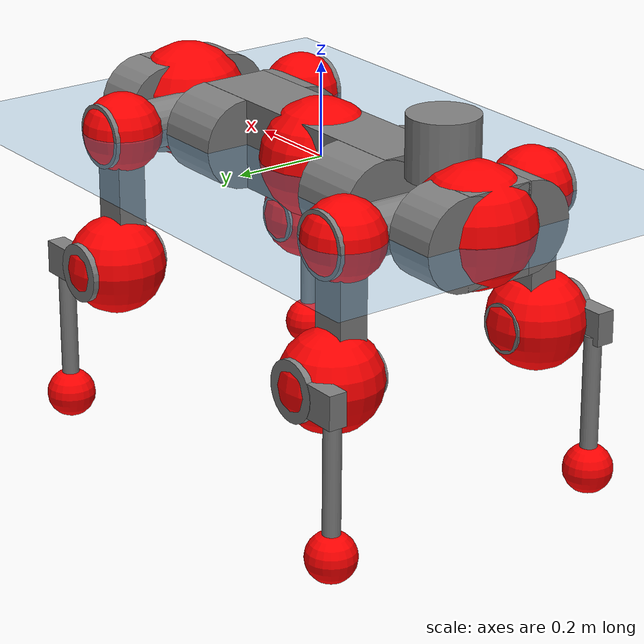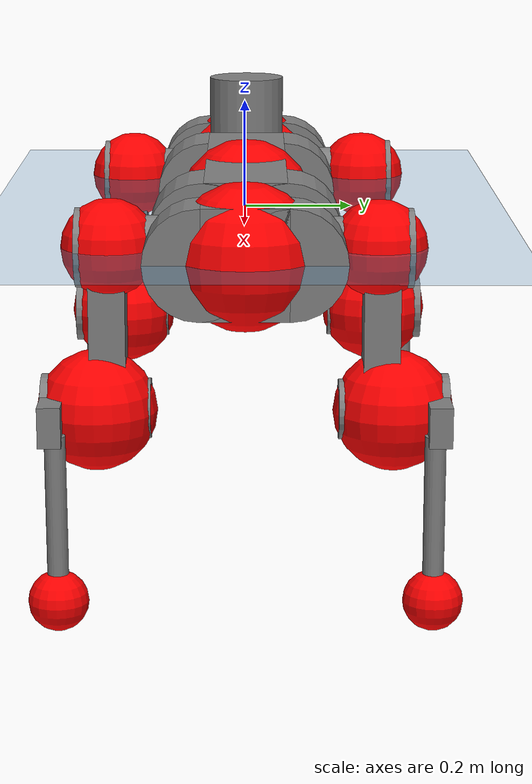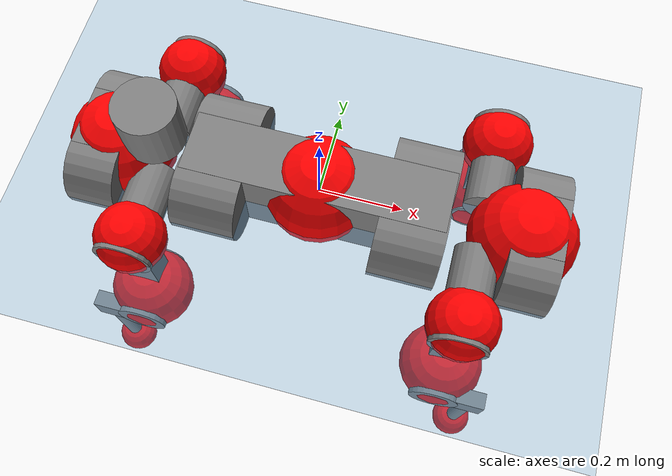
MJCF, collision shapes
<mujoco model="anymal_c">
  <compiler angle="radian" assetdir="assets" balanceinertia="true" inertiafromgeom="false"/>

  <option timestep="0.005" density="1.2" viscosity="2e-05"/>

  <size nkey="1"/>

  <visual>
    <quality shadowsize="8192"/>
    <map shadowclip="0.5"/>
  </visual>

  <default>
    <default class="/">
      <material specular="0" shininess="0.25"/>
      <geom contype="0" conaffinity="0" group="1" solref="-1000 -80"/>
      <site size="0.01 0.005 0.005" group="5"/>
      <general forcelimited="true" forcerange="-80 80" biastype="affine" gainprm="80" biasprm="0 -80 -2"/>
      <default class="anymal_c">
        <joint armature="0.01" damping="0.01" frictionloss="0.1"/>
        <default class="visual">
          <geom type="mesh" group="2"/>
          <default class="visual_zflip"/>
        </default>
        <default class="collision">
          <geom type="cylinder" group="3"/>
          <default class="foot">
            <geom size="0.03 0 0" type="sphere" condim="6" priority="1" friction="0.8 0.02 0.01" solimp="0.015 1 0.03"/>
          </default>
        </default>
      </default>
      <default class="reward_collision_sphere">
        <geom group="5" rgba="1 0 0 1"/>
      </default>
    </default>
  </default>

  <asset>
    <texture type="skybox" colorspace="auto" name="//unnamed_texture_0" builtin="gradient" rgb1="0.95 0.95 0.95" rgb2="0.95 0.95 0.95" width="100" height="600"/>
    <texture type="2d" colorspace="auto" name="texplane" builtin="checker" rgb1="0.345 0.575 0.748" rgb2="0.345 0.575 0.748" markrgb="1 1 1" width="512" height="512"/>
    <texture type="2d" colorspace="linear" name="base" file="base.png"/>
    <texture type="2d" colorspace="linear" name="top_shell" file="top_shell.png"/>
    <texture type="2d" colorspace="linear" name="bottom_shell" file="bottom_shell.png"/>
    <texture type="2d" colorspace="linear" name="remote" file="remote.png"/>
    <texture type="2d" colorspace="linear" name="hatch" file="hatch.png"/>
    <texture type="2d" colorspace="linear" name="handle" file="handle.png"/>
    <texture type="2d" colorspace="linear" name="face" file="face.png"/>
    <texture type="2d" colorspace="linear" name="battery" file="battery.png"/>
    <texture type="2d" colorspace="linear" name="lidar_cage" file="lidar_cage.png"/>
    <texture type="2d" colorspace="linear" name="depth_camera" file="depth_camera.png"/>
    <texture type="2d" colorspace="linear" name="wide_angle_camera" file="wide_angle_camera.png"/>
    <texture type="2d" colorspace="linear" name="lidar" file="lidar.png"/>
    <texture type="2d" colorspace="linear" name="drive" file="drive.png"/>
    <texture type="2d" colorspace="linear" name="hip_l" file="hip_l.png"/>
    <texture type="2d" colorspace="linear" name="shank_l" file="shank_l.png"/>
    <texture type="2d" colorspace="linear" name="foot" file="foot.png"/>
    <texture type="2d" colorspace="linear" name="thigh" file="thigh.png"/>
    <texture type="2d" colorspace="linear" name="shank_r" file="shank_r.png"/>
    <texture type="2d" colorspace="linear" name="hip_r" file="hip_r.png"/>
    <material name="MatPlane" class="/" texture="texplane" texuniform="true" texrepeat="2 2" specular="0.9" shininess="0.5"/>
    <material name="black_plastic" class="/" rgba="0.007 0.007 0.007 1"/>
    <material name="green" class="/" rgba="0.052 0.178 0.033 1"/>
    <material name="red" class="/" rgba="0.178 0.006 0.005 1"/>
    <material name="yellow" class="/" rgba="0.178 0.119 0.006 1"/>
    <material name="lwl" class="/" rgba="0.8 0.8 0.8 1"/>
    <material name="base" class="/" texture="base"/>
    <material name="top_shell" class="/" texture="top_shell"/>
    <material name="bottom_shell" class="/" texture="bottom_shell"/>
    <material name="hip_l" class="/" texture="hip_l"/>
    <material name="thigh" class="/" texture="thigh"/>
    <material name="shank_l" class="/" texture="shank_l"/>
    <material name="foot" class="/" texture="foot"/>
    <material name="hip_r" class="/" texture="hip_r"/>
    <material name="shank" class="/" texture="shank_r"/>
    <material name="hatch" class="/" texture="hatch"/>
    <material name="remote" class="/" texture="remote"/>
    <material name="handle" class="/" texture="handle"/>
    <material name="face" class="/" texture="face"/>
    <material name="depth_camera" class="/" texture="depth_camera"/>
    <material name="wide_angle_camera" class="/" texture="wide_angle_camera"/>
    <material name="battery" class="/" texture="battery"/>
    <material name="lidar_cage" class="/" texture="lidar_cage"/>
    <material name="lidar" class="/" texture="lidar"/>
    <material name="drive" class="/" texture="drive"/>
    <mesh name="base_0" class="/" file="base_0.obj"/>
    <mesh name="base_1" class="/" file="base_1.obj"/>
    <mesh name="base_2" class="/" file="base_2.obj"/>
    <mesh name="base_3" class="/" file="base_3.obj"/>
    <mesh name="base_4" class="/" file="base_4.obj"/>
    <mesh name="base_5" class="/" file="base_5.obj"/>
    <mesh name="top_shell" class="/" file="top_shell.obj"/>
    <mesh name="bottom_shell" class="/" file="bottom_shell.obj"/>
    <mesh name="remote" class="/" file="remote.obj"/>
    <mesh name="handle" class="/" file="handle.obj"/>
    <mesh name="face" class="/" file="face.obj"/>
    <mesh name="wide_angle_camera" class="/" file="wide_angle_camera.obj"/>
    <mesh name="depth_camera" class="/" file="depth_camera.obj"/>
    <mesh name="battery" class="/" file="battery.obj"/>
    <mesh name="lidar_cage" class="/" file="lidar_cage.obj"/>
    <mesh name="lidar" class="/" file="lidar.obj"/>
    <mesh name="drive" class="/" file="drive.obj"/>
    <mesh name="hip_l" class="/" file="hip_l.obj"/>
    <mesh name="thigh" class="/" file="thigh.obj"/>
    <mesh name="shank_l" class="/" file="shank_l.obj"/>
    <mesh name="foot" class="/" file="foot.obj"/>
    <mesh name="hip_r" class="/" file="hip_r.obj"/>
    <mesh name="hatch" class="/" file="hatch.obj"/>
    <mesh name="shank_r" class="/" file="shank_r.obj"/>
  </asset>

  <worldbody>
    <geom name="floor" class="/" size="100 100 0.125" type="plane" group="0" material="MatPlane"/>
    <light name="toplight_shadow" class="/" pos="0 0 5" dir="0.0990148 0.0990148 -0.990148" type="directional" ambient="0.04 0.04 0.04" diffuse="0.55 0.55 0.55" specular="0.12 0.12 0.12"/>
    <light name="toplight_fill" class="/" pos="0 0 5" dir="0.0990148 0.0990148 -0.990148" type="directional" castshadow="false" ambient="0.04 0.04 0.04" diffuse="0.3 0.3 0.3" specular="0.08 0.08 0.08"/>
    <body name="trunk" childclass="anymal_c" pos="-0.00275413 0.00210807 -0.000978885" quat="0.999999 0.000690666 0.000859487 0.000601575">
      <inertial pos="0.0025539 -0.00243159 0.0508498" quat="0.504434 0.496797 0.500191 0.498546" mass="23.4972" diaginertia="0.878939 0.970277 0.223563"/>
      <joint name="//unnamed_joint_0" type="free" armature="0" damping="0" frictionloss="0"/>
      <geom name="//unnamed_geom_1" class="visual" material="green" mesh="base_0"/>
      <geom name="//unnamed_geom_2" class="visual" material="yellow" mesh="base_1"/>
      <geom name="//unnamed_geom_3" class="visual" material="red" mesh="base_2"/>
      <geom name="//unnamed_geom_4" class="visual" material="black_plastic" mesh="base_3"/>
      <geom name="//unnamed_geom_5" class="visual" material="lwl" mesh="base_4"/>
      <geom name="//unnamed_geom_6" class="visual" material="base" mesh="base_5"/>
      <geom name="trunk_1" class="collision" size="0.307696 0.0742715 0.0954919" type="box"/>
      <geom name="trunk_2" class="collision" size="0.0954919 0.076924" pos="0.23454 0.0767848 0" quat="0.707107 0 0.707107 0"/>
      <geom name="trunk_3" class="collision" size="0.0954919 0.076924" pos="-0.23454 0.0767848 0" quat="0.707107 0 0.707107 0"/>
      <geom name="trunk_4" class="collision" size="0.0954919 0.076924" pos="0.23454 -0.0767848 0" quat="0.707107 0 0.707107 0"/>
      <geom name="trunk_5" class="collision" size="0.0954919 0.076924" pos="-0.23454 -0.0767848 0" quat="0.707107 0 0.707107 0"/>
      <geom name="//unnamed_geom_12" class="visual" material="top_shell" mesh="top_shell"/>
      <geom name="//unnamed_geom_13" class="visual" material="bottom_shell" mesh="bottom_shell"/>
      <geom name="//unnamed_geom_14" class="visual" material="remote" mesh="remote"/>
      <geom name="//unnamed_geom_15" class="visual" material="handle" mesh="handle"/>
      <geom name="//unnamed_geom_16" class="visual" pos="0.446974 0 0" quat="1 0 0 0" material="face" mesh="face"/>
      <geom name="trunk_6" class="collision" size="0.0583561 0.0742715 0.0954919" pos="0.506283 0 0" type="box"/>
      <geom name="//unnamed_geom_18" class="collision" size="0.0954919 0.0583561" pos="0.506283 0.0767848 0" quat="0.707107 0 0.707107 0"/>
      <geom name="//unnamed_geom_19" class="collision" size="0.0954919 0.0583561" pos="0.506283 -0.0767848 0" quat="0.707107 0 0.707107 0"/>
      <geom name="//unnamed_geom_20" class="visual" pos="0.497815 0 -0.0288913" quat="0.965926 0 0.258819 0" material="depth_camera" mesh="depth_camera"/>
      <geom name="//unnamed_geom_21" class="visual" pos="0.553191 0 0.0150866" material="wide_angle_camera" mesh="wide_angle_camera"/>
      <geom name="//unnamed_geom_22" class="visual_zflip" pos="-0.446974 0 0" quat="0 0 0 1" material="face" mesh="face"/>
      <geom name="trunk_7" class="collision" size="0.0583561 0.0742715 0.0954919" pos="-0.506283 0 0" quat="0 0 0 1" type="box"/>
      <geom name="//unnamed_geom_24" class="collision" size="0.0954919 0.0583561" pos="-0.506283 -0.0767848 0" quat="0 -0.707107 0 0.707107"/>
      <geom name="//unnamed_geom_25" class="collision" size="0.0954919 0.0583561" pos="-0.506283 0.0767848 0" quat="0 -0.707107 0 0.707107"/>
      <geom name="//unnamed_geom_26" class="visual" pos="-0.497815 0 -0.0288913" quat="0 -0.258819 0 0.965926" material="depth_camera" mesh="depth_camera"/>
      <geom name="//unnamed_geom_27" class="visual_zflip" pos="-0.553191 0 0.0150866" quat="0 0 0 1" material="wide_angle_camera" mesh="wide_angle_camera"/>
      <geom name="//unnamed_geom_28" class="visual" material="battery" mesh="battery"/>
      <geom name="//unnamed_geom_29" class="visual" pos="0 0.0841118 0.0298126" quat="0.683013 -0.183013 0.183013 0.683013" material="depth_camera" mesh="depth_camera"/>
      <geom name="//unnamed_geom_30" class="visual" pos="0 -0.0841118 0.0298126" quat="0.683013 0.183013 0.183013 -0.683013" material="depth_camera" mesh="depth_camera"/>
      <geom name="//unnamed_geom_31" class="visual" pos="-0.392518 0 0.0740727" quat="1 0 0 0" material="lidar_cage" mesh="lidar_cage"/>
      <geom name="trunk_8" class="collision" size="0.0742715 0.0636613" pos="-0.392518 0 0.13454"/>
      <geom name="//unnamed_geom_33" class="visual" pos="-0.392518 7.3e-06 0.143308" quat="0.707107 0 0 -0.707107" material="lidar" mesh="lidar"/>
      <geom name="//unnamed_geom_34" class="visual" pos="0.323396 0.114049 1.53757e-09" quat="0.258819 0.965926 0 0" material="drive" mesh="drive"/>
      <geom name="//unnamed_geom_35" class="visual" pos="0.323396 -0.114049 -1.53757e-09" quat="0.258819 -0.965926 0 0" material="drive" mesh="drive"/>
      <geom name="//unnamed_geom_36" class="visual" pos="-0.323396 0.114049 -1.53757e-09" quat="0 0 0.965926 -0.258819" material="drive" mesh="drive"/>
      <geom name="//unnamed_geom_37" class="visual" pos="-0.323396 -0.114049 1.53757e-09" quat="0 0 -0.965926 -0.258819" material="drive" mesh="drive"/>
      <geom name="//unnamed_geom_38" class="visual" pos="0.125088 0 0.0735688" quat="1 0 0 0" material="hatch" mesh="hatch"/>
      <geom name="//unnamed_geom_39" class="reward_collision_sphere" size="0.127323"/>
      <geom name="//unnamed_geom_40" class="reward_collision_sphere" size="0.127323" pos="0.485255 0 0"/>
      <geom name="//unnamed_geom_41" class="reward_collision_sphere" size="0.127323" pos="-0.485255 0 0"/>
      <site name="imu" pos="0.280854 -0.000637566 0.0671741" size="0.0106102"/>
      <camera name="track" pos="0 -2.19385 0" quat="0.707107 0.707107 0 0" mode="trackcom"/>
      <camera name="ego_camera" pos="0.485255 0 -0.0403117" quat="-0.5 -0.5 0.5 0.5"/>
      <body name="LF_HIP" pos="0.326114 0.114067 -0.00143453" quat="0.258551 0.965997 -0.000218963 0.00100711">
        <inertial pos="0.0646917 -0.0186275 -0.00739669" quat="-0.130741 0.711122 -0.136839 0.677117" mass="3.21265" diaginertia="0.00826477 0.0078529 0.00333851"/>
        <joint name="LF_HAA" pos="0 0 0" axis="0.999645 -0.0220215 0.0150144" stiffness="0.0137831" range="-0.742641 0.485695" armature="0.0127545" damping="0.0241824" frictionloss="0.113904"/>
        <geom name="//unnamed_geom_42" class="visual" pos="0 9.04483e-05 -1.48561e-05" quat="0.258819 -0.965926 0 0" material="hip_l" mesh="hip_l"/>
        <geom name="//unnamed_geom_43" class="visual" pos="0.0645929 -0.078481 -0.0446517" quat="0.183013 -0.683013 0.683013 0.183013" material="drive" mesh="drive"/>
        <geom name="//unnamed_geom_44" class="collision" size="0.053051 0.0742715" pos="0.0645929 -0.013119 -0.0069588" quat="-0.353553 -0.612372 0.612372 -0.353553"/>
        <body name="LF_THIGH" pos="0.0643727 -0.0794919 -0.042407" quat="0.182836 -0.683281 0.682983 0.182297">
          <inertial pos="0.0330686 0.000297767 -0.243009" quat="0.992837 0.00185187 -0.0806402 0.0881433" mass="3.57885" diaginertia="0.0427222 0.0462138 0.00423087"/>
          <joint name="LF_HFE" pos="0 0 0" axis="0.999965 -0.00161691 0.00816248" range="-3.10501 3.14157" armature="0.00956683" damping="0.00415574" frictionloss="0.10189"/>
          <geom name="//unnamed_geom_45" class="visual" pos="-0.00036969 -5.82545e-07 0" quat="0.707107 0 0 -0.707107" material="thigh" mesh="thigh"/>
          <geom name="//unnamed_geom_46" class="collision" size="0.0689664 0.0424408" pos="0.0431338 0 0" quat="0.5 0.5 -0.5 -0.5"/>
          <geom name="//unnamed_geom_47" class="collision" size="0.0397883 0.0318306 0.149937" pos="0.0323503 0 -0.142415" quat="0.707107 0 0 -0.707107" type="box"/>
          <geom name="//unnamed_geom_48" class="visual" pos="0.108158 0 -0.287221" quat="1 0 0 0" material="drive" mesh="drive"/>
          <geom name="//unnamed_geom_49" class="collision" size="0.053051 0.0742715" pos="0.0326738 0 -0.287221" quat="0.707107 0 0.707107 0"/>
          <geom name="//unnamed_geom_50" class="reward_collision_sphere" size="0.0848817" pos="0.0269586 0 0"/>
          <body name="LF_SHANK" pos="0.108582 0.00478012 -0.290229" quat="1 1.44098e-05 0.000199479 -0.000212064">
            <inertial pos="0.00746222 -0.069605 -0.0808983" quat="0.992683 -0.112882 -0.000757893 -0.042872" mass="0.712336" diaginertia="0.0151061 0.0146229 0.00120084"/>
            <joint name="LF_KFE" pos="0 0 0" axis="0.999896 0.0134146 -0.00529943" range="-3.15602 3.095" armature="0.0101178" damping="0.0118812" frictionloss="0.113513"/>
            <geom name="//unnamed_geom_51" class="visual" pos="-0.000120548 -0.000642768 0" quat="0.707107 0 0 -0.707107" material="shank_l" mesh="shank_l"/>
            <geom name="LF_kfe_act" class="collision" size="0.0636613 0.0212204" pos="0.0215669 0 0" quat="0.5 0.5 -0.5 -0.5"/>
            <geom name="//unnamed_geom_53" class="collision" size="0.0610076 0.0358095 0.0201594" pos="0.0215669 -0.0630721 0" quat="0.5 0.5 -0.5 -0.5" type="box"/>
            <geom name="//unnamed_geom_54" class="visual" pos="0.0140724 -0.0966818 -0.340603" quat="0.382683 0 0 -0.92388" material="foot" mesh="foot"/>
            <geom name="LF_calf" class="collision" size="0.0185679 0.149871" pos="0.0140724 -0.0964746 -0.170302" quat="0.707107 0 0 -0.707107"/>
            <geom name="LF_foot" class="foot" size="0.0319005" pos="0.0140724 -0.0964746 -0.317928" quat="0.707107 0 0 -0.707107"/>
            <geom name="//unnamed_geom_57" class="reward_collision_sphere" size="0.106102" pos="-0.0539172 0 0"/>
            <geom name="//unnamed_geom_58" class="reward_collision_sphere" size="0.053051" pos="0.0140724 -0.0964746 -0.317928"/>
            <site name="LF_foot" class="foot" pos="0.0140724 -0.0964746 -0.317928" quat="0.707107 0 0 -0.707107" size="0.0106102"/>
          </body>
        </body>
      </body>
      <body name="RF_HIP" pos="0.328086 -0.118859 0.00161731" quat="0.2598 -0.965662 0.000377584 -6.5637e-05">
        <inertial pos="0.0568625 0.0197768 -0.00511888" quat="0.136705 0.677994 0.126937 0.711001" mass="3.24093" diaginertia="0.00806062 0.00743344 0.00324109"/>
        <joint name="RF_HAA" pos="0 0 0" axis="0.999924 -0.00162453 -0.0122222" range="-0.422227 0.759648" armature="0.0102182" damping="0.0189547" frictionloss="0.116328"/>
        <geom name="//unnamed_geom_59" class="visual" pos="0 -9.04476e-05 -1.4856e-05" quat="0.258819 0.965926 0 0" material="hip_r" mesh="hip_r"/>
        <geom name="//unnamed_geom_60" class="visual" pos="0.0645929 0.078481 -0.0446517" quat="0.183013 0.683013 0.683013 -0.183013" material="drive" mesh="drive"/>
        <geom name="//unnamed_geom_61" class="collision" size="0.053051 0.0742715" pos="0.0645929 0.013119 -0.0069588" quat="-0.353553 0.612372 0.612372 0.353553"/>
        <body name="RF_THIGH" pos="0.0647627 0.0781262 -0.041835" quat="0.183319 0.683627 0.68238 -0.182772">
          <inertial pos="0.0319714 -0.00539394 -0.245005" quat="0.992807 -0.00493213 -0.080272 0.0886917" mass="3.78197" diaginertia="0.0439914 0.0502101 0.00447101"/>
          <joint name="RF_HFE" pos="0 0 0" axis="0.999997 0.00140351 -0.00208478" stiffness="0.0104309" range="-3.18061 3.16752" armature="0.00916367" damping="0.0147939" frictionloss="0.118606"/>
          <geom name="//unnamed_geom_62" class="visual" pos="-0.00036969 -5.82545e-07 0" quat="0.707107 0 0 -0.707107" material="thigh" mesh="thigh"/>
          <geom name="//unnamed_geom_63" class="collision" size="0.0689664 0.0424408" pos="0.0431338 0 0" quat="0.5 0.5 0.5 0.5"/>
          <geom name="//unnamed_geom_64" class="collision" size="0.0397883 0.0318306 0.149937" pos="0.0323503 0 -0.142415" quat="0.707107 0 0 0.707107" type="box"/>
          <geom name="//unnamed_geom_65" class="visual" pos="0.108158 0 -0.287221" quat="1 0 0 0" material="drive" mesh="drive"/>
          <geom name="//unnamed_geom_66" class="collision" size="0.053051 0.0742715" pos="0.0326738 0 -0.287221" quat="0.707107 0 0.707107 0"/>
          <geom name="//unnamed_geom_67" class="reward_collision_sphere" size="0.0848817" pos="0.0269586 0 0"/>
          <body name="RF_SHANK" pos="0.106962 0.00291891 -0.289352" quat="0.999997 0.00121796 0.0016377 0.000932129">
            <inertial pos="0.000368522 0.0670947 -0.0831622" quat="0.993368 0.110304 0.00680121 0.0317279" mass="0.701188" diaginertia="0.014665 0.013885 0.00106982"/>
            <joint name="RF_KFE" pos="0 0 0" axis="0.999939 -0.00525604 0.00968161" range="-3.06682 3.11802" armature="0.0117758" damping="0" frictionloss="0.0925717"/>
            <geom name="//unnamed_geom_68" class="visual" pos="-0.000120547 0.000642766 0" quat="0.707107 0 0 0.707107" material="shank" mesh="shank_r"/>
            <geom name="RF_kfe_act" class="collision" size="0.0636613 0.0212204" pos="0.0215669 0 0" quat="0.5 0.5 0.5 0.5"/>
            <geom name="//unnamed_geom_70" class="collision" size="0.0610076 0.0358095 0.0201594" pos="0.0215669 0.0630721 0" quat="0.5 0.5 0.5 0.5" type="box"/>
            <geom name="//unnamed_geom_71" class="visual" pos="0.0140724 0.0966818 -0.340603" quat="0.382683 0 0 0.92388" material="foot" mesh="foot"/>
            <geom name="RF_calf" class="collision" size="0.0185679 0.149871" pos="0.0140724 0.0964746 -0.170302" quat="0.707107 0 0 0.707107"/>
            <geom name="RF_foot" class="foot" size="0.0291268" pos="0.0140724 0.0964746 -0.317928" quat="0.707107 0 0 0.707107"/>
            <geom name="//unnamed_geom_74" class="reward_collision_sphere" size="0.106102" pos="-0.0539172 0 0"/>
            <geom name="//unnamed_geom_75" class="reward_collision_sphere" size="0.053051" pos="0.0140724 0.0964746 -0.317928"/>
            <site name="RF_foot" class="foot" pos="0.0140724 0.0964746 -0.317928" quat="0.707107 0 0 0.707107" size="0.0106102"/>
          </body>
        </body>
      </body>
      <body name="LH_HIP" pos="-0.329013 0.116699 -0.000287652" quat="0.000287345 0.00081616 0.965867 -0.259038">
        <inertial pos="0.0574324 0.021974 -0.00922171" quat="0.12433 0.680531 0.132565 0.709821" mass="3.2922" diaginertia="0.00835803 0.00788288 0.00355002"/>
        <joint name="LH_HAA" pos="0 0 0" axis="0.999955 0.00732543 0.00599603" range="-0.49736 0.764786" armature="0.0105268" damping="0.00858979" frictionloss="0.0938255"/>
        <geom name="//unnamed_geom_76" class="visual" pos="0 -9.04476e-05 -1.4856e-05" quat="-0.258819 -0.965926 0 0" material="hip_r" mesh="hip_r"/>
        <geom name="//unnamed_geom_77" class="visual" pos="0.0645929 0.078481 -0.0446517" quat="0.183013 0.683013 0.683013 -0.183013" material="drive" mesh="drive"/>
        <geom name="//unnamed_geom_78" class="collision" size="0.053051 0.0742715" pos="0.0645929 0.013119 -0.0069588" quat="-0.353553 0.612372 0.612372 0.353553"/>
        <body name="LH_THIGH" pos="0.0650975 0.0816989 -0.0444653" quat="0.184161 0.682653 0.683175 -0.182594">
          <inertial pos="0.0357225 -0.00407099 -0.246617" quat="0.992872 -0.00722933 -0.0760844 0.0914562" mass="3.75094" diaginertia="0.0438503 0.0475536 0.00458216"/>
          <joint name="LH_HFE" pos="0 0 0" axis="0.999878 -0.013277 0.00828717" stiffness="0.00352548" range="-3.14651 3.14505" armature="0.00873584" damping="0.0199585" frictionloss="0.0954667"/>
          <geom name="//unnamed_geom_79" class="visual" pos="-0.00036969 -5.82545e-07 0" quat="0.707107 0 0 -0.707107" material="thigh" mesh="thigh"/>
          <geom name="//unnamed_geom_80" class="collision" size="0.0689664 0.0424408" pos="0.0431338 0 0" quat="0.5 0.5 -0.5 -0.5"/>
          <geom name="//unnamed_geom_81" class="collision" size="0.0397883 0.0318306 0.149937" pos="0.0323503 0 -0.142415" quat="0.707107 0 0 -0.707107" type="box"/>
          <geom name="//unnamed_geom_82" class="visual" pos="0.108158 0 -0.287221" quat="1 0 0 0" material="drive" mesh="drive"/>
          <geom name="//unnamed_geom_83" class="collision" size="0.053051 0.0742715" pos="0.0326738 0 -0.287221" quat="0.707107 0 0.707107 0"/>
          <geom name="//unnamed_geom_84" class="reward_collision_sphere" size="0.0848817" pos="0.0269586 0 0"/>
          <body name="LH_SHANK" pos="0.10797 -0.00206164 -0.282393" quat="0.999997 -0.00199342 -0.00110089 0.000812341">
            <inertial pos="0.00741771 0.0673888 -0.0869016" quat="0.992506 0.118705 0.00161575 0.0289616" mass="0.722532" diaginertia="0.0147027 0.0142057 0.00114859"/>
            <joint name="LH_KFE" pos="0 0 0" axis="0.999952 0.00974108 -0.00110189" range="-3.09764 3.13501" armature="0.0119317" damping="0.00510233" frictionloss="0.112781"/>
            <geom name="//unnamed_geom_85" class="visual" pos="-0.000120547 0.000642766 0" quat="-0.707107 0 0 -0.707107" material="shank" mesh="shank_r"/>
            <geom name="LH_kfe_act" class="collision" size="0.0636613 0.0212204" pos="0.0215669 0 0" quat="0.5 0.5 -0.5 -0.5"/>
            <geom name="//unnamed_geom_87" class="collision" size="0.0610076 0.0358095 0.0201594" pos="0.0215669 0.0630721 0" quat="0.5 0.5 -0.5 -0.5" type="box"/>
            <geom name="//unnamed_geom_88" class="visual" pos="0.0140724 0.0966818 -0.340603" quat="-0.382683 0 0 -0.92388" material="foot" mesh="foot"/>
            <geom name="LH_calf" class="collision" size="0.0185679 0.149871" pos="0.0140724 0.0964746 -0.170302" quat="0.707107 0 0 -0.707107"/>
            <geom name="LH_foot" class="foot" size="0.0338603" pos="0.0140724 0.0964746 -0.317928" quat="0.707107 0 0 -0.707107"/>
            <geom name="//unnamed_geom_91" class="reward_collision_sphere" size="0.106102" pos="-0.0539172 0 0"/>
            <geom name="//unnamed_geom_92" class="reward_collision_sphere" size="0.053051" pos="0.0140724 0.0964746 -0.317928"/>
            <site name="LH_foot" class="foot" pos="0.0140724 0.0964746 -0.317928" quat="0.707107 0 0 -0.707107" size="0.0106102"/>
          </body>
        </body>
      </body>
      <body name="RH_HIP" pos="-0.319489 -0.111389 -0.000328412" quat="-0.000246711 0.000899379 -0.965923 -0.258829">
        <inertial pos="0.0604201 -0.0156658 -0.00908519" quat="-0.119576 0.710939 -0.117826 0.682923" mass="3.24112" diaginertia="0.00837303 0.00759158 0.00333633"/>
        <joint name="RH_HAA" pos="0 0 0" axis="0.999767 -0.0165226 0.0139031" range="-0.722853 0.540922" armature="0.00947595" damping="0.0170131" frictionloss="0.104135"/>
        <geom name="//unnamed_geom_93" class="visual" pos="0 9.04483e-05 -1.48561e-05" quat="-0.258819 0.965926 0 0" material="hip_l" mesh="hip_l"/>
        <geom name="//unnamed_geom_94" class="visual" pos="0.0645929 -0.078481 -0.0446517" quat="-0.183013 0.683013 -0.683013 -0.183013" material="drive" mesh="drive"/>
        <geom name="//unnamed_geom_95" class="collision" size="0.053051 0.0742715" pos="0.0645929 -0.013119 -0.0069588" quat="0.353553 0.612372 -0.612372 0.353553"/>
        <body name="RH_THIGH" pos="0.0667995 -0.08095 -0.0452543" quat="-0.183409 0.682829 -0.682755 -0.184258">
          <inertial pos="0.0360567 -0.00123625 -0.245002" quat="0.994013 0.00507518 -0.0590586 0.091787" mass="3.51947" diaginertia="0.0435574 0.0459634 0.00403328"/>
          <joint name="RH_HFE" pos="0 0 0" axis="0.999894 0.0139956 0.00399696" stiffness="0.00411168" range="-3.15275 3.18931" armature="0.00965969" damping="0.0222035" frictionloss="0.0987387"/>
          <geom name="//unnamed_geom_96" class="visual" pos="-0.00036969 -5.82545e-07 0" quat="0.707107 0 0 -0.707107" material="thigh" mesh="thigh"/>
          <geom name="//unnamed_geom_97" class="collision" size="0.0689664 0.0424408" pos="0.0431338 0 0" quat="0.5 0.5 0.5 0.5"/>
          <geom name="//unnamed_geom_98" class="collision" size="0.0397883 0.0318306 0.149937" pos="0.0323503 0 -0.142415" quat="0.707107 0 0 0.707107" type="box"/>
          <geom name="//unnamed_geom_99" class="visual" pos="0.108158 0 -0.287221" quat="1 0 0 0" material="drive" mesh="drive"/>
          <geom name="//unnamed_geom_100" class="collision" size="0.053051 0.0742715" pos="0.0326738 0 -0.287221" quat="0.707107 0 0.707107 0"/>
          <geom name="//unnamed_geom_101" class="reward_collision_sphere" size="0.0848817" pos="0.0269586 0 0"/>
          <body name="RH_SHANK" pos="0.106055 0.000427328 -0.287396" quat="1 2.7715e-05 0.000162637 -1.33363e-05">
            <inertial pos="0.00852135 -0.0627001 -0.0849963" quat="0.993064 -0.115482 0.000351367 -0.0220928" mass="0.672751" diaginertia="0.0145655 0.0139952 0.00113667"/>
            <joint name="RH_KFE" pos="0 0 0" axis="1 -8.81947e-05 -0.000397705" range="-3.17247 3.06455" armature="0.0107132" damping="0.0183786" frictionloss="0.0851429"/>
            <geom name="//unnamed_geom_102" class="visual" pos="-0.000120548 -0.000642768 0" quat="0.707107 0 0 -0.707107" material="shank_l" mesh="shank_l"/>
            <geom name="RH_kfe_act" class="collision" size="0.0636613 0.0212204" pos="0.0215669 0 0" quat="0.5 0.5 0.5 0.5"/>
            <geom name="//unnamed_geom_104" class="collision" size="0.0610076 0.0358095 0.0201594" pos="0.0215669 -0.0630721 0" quat="0.5 0.5 0.5 0.5" type="box"/>
            <geom name="//unnamed_geom_105" class="visual" pos="0.0140724 -0.0966818 -0.340603" quat="0.382683 0 0 -0.92388" material="foot" mesh="foot"/>
            <geom name="RH_calf" class="collision" size="0.0185679 0.149871" pos="0.0140724 -0.0964746 -0.170302" quat="0.707107 0 0 0.707107"/>
            <geom name="RH_foot" class="foot" size="0.0273849" pos="0.0140724 -0.0964746 -0.317928" quat="0.707107 0 0 0.707107"/>
            <geom name="//unnamed_geom_108" class="reward_collision_sphere" size="0.106102" pos="-0.0539172 0 0"/>
            <geom name="//unnamed_geom_109" class="reward_collision_sphere" size="0.053051" pos="0.0140724 -0.0964746 -0.317928"/>
            <site name="RH_foot" class="foot" pos="0.0140724 -0.0964746 -0.317928" quat="0.707107 0 0 0.707107" size="0.0106102"/>
          </body>
        </body>
      </body>
    </body>
  </worldbody>

  <contact>
    <pair class="/" geom1="floor" geom2="LF_foot" name="//unnamed_contact_0"/>
    <pair class="/" geom1="floor" geom2="RF_foot" name="//unnamed_contact_1"/>
    <pair class="/" geom1="floor" geom2="LH_foot" name="//unnamed_contact_2"/>
    <pair class="/" geom1="floor" geom2="RH_foot" name="//unnamed_contact_3"/>
  </contact>

  <actuator>
    <general name="LF_HAA" class="/" joint="LF_HAA" forcerange="-85.8642 85.8642" gainprm="85.468" biasprm="0 -85.468 -2.28893"/>
    <general name="LF_HFE" class="/" joint="LF_HFE" forcerange="-91.1137 91.1137" gainprm="85.468" biasprm="0 -85.468 -2.28893"/>
    <general name="LF_KFE" class="/" joint="LF_KFE" forcerange="-90.9993 90.9993" gainprm="85.468" biasprm="0 -85.468 -2.28893"/>
    <general name="RF_HAA" class="/" joint="RF_HAA" forcerange="-82.7055 82.7055" gainprm="85.468" biasprm="0 -85.468 -2.28893"/>
    <general name="RF_HFE" class="/" joint="RF_HFE" forcerange="-94.8535 94.8535" gainprm="85.468" biasprm="0 -85.468 -2.28893"/>
    <general name="RF_KFE" class="/" joint="RF_KFE" forcerange="-87.0032 87.0032" gainprm="85.468" biasprm="0 -85.468 -2.28893"/>
    <general name="LH_HAA" class="/" joint="LH_HAA" forcerange="-84.8495 84.8495" gainprm="85.468" biasprm="0 -85.468 -2.28893"/>
    <general name="LH_HFE" class="/" joint="LH_HFE" forcerange="-86.2413 86.2413" gainprm="85.468" biasprm="0 -85.468 -2.28893"/>
    <general name="LH_KFE" class="/" joint="LH_KFE" forcerange="-82.346 82.346" gainprm="85.468" biasprm="0 -85.468 -2.28893"/>
    <general name="RH_HAA" class="/" joint="RH_HAA" forcerange="-84.7683 84.7683" gainprm="85.468" biasprm="0 -85.468 -2.28893"/>
    <general name="RH_HFE" class="/" joint="RH_HFE" forcerange="-93.8055 93.8055" gainprm="85.468" biasprm="0 -85.468 -2.28893"/>
    <general name="RH_KFE" class="/" joint="RH_KFE" forcerange="-100.488 100.488" gainprm="85.468" biasprm="0 -85.468 -2.28893"/>
  </actuator>

  <sensor>
    <gyro site="imu" name="imu_angular_velocity"/>
    <velocimeter site="imu" name="imu_linear_velocity"/>
    <framelinvel objtype="site" objname="LF_foot" name="LF_foot_global_linear_velocity"/>
    <framelinvel objtype="site" objname="RF_foot" name="RF_foot_global_linear_velocity"/>
    <framelinvel objtype="site" objname="LH_foot" name="LH_foot_global_linear_velocity"/>
    <framelinvel objtype="site" objname="RH_foot" name="RH_foot_global_linear_velocity"/>
  </sensor>

  <keyframe>
    <key name="home" qpos="0 0 0.55 1 0 0 0 0 0.4 -0.8 0 -0.4 0.8 0 -0.4 0.8 0 0.4 -0.8"/>
  </keyframe>
</mujoco>
